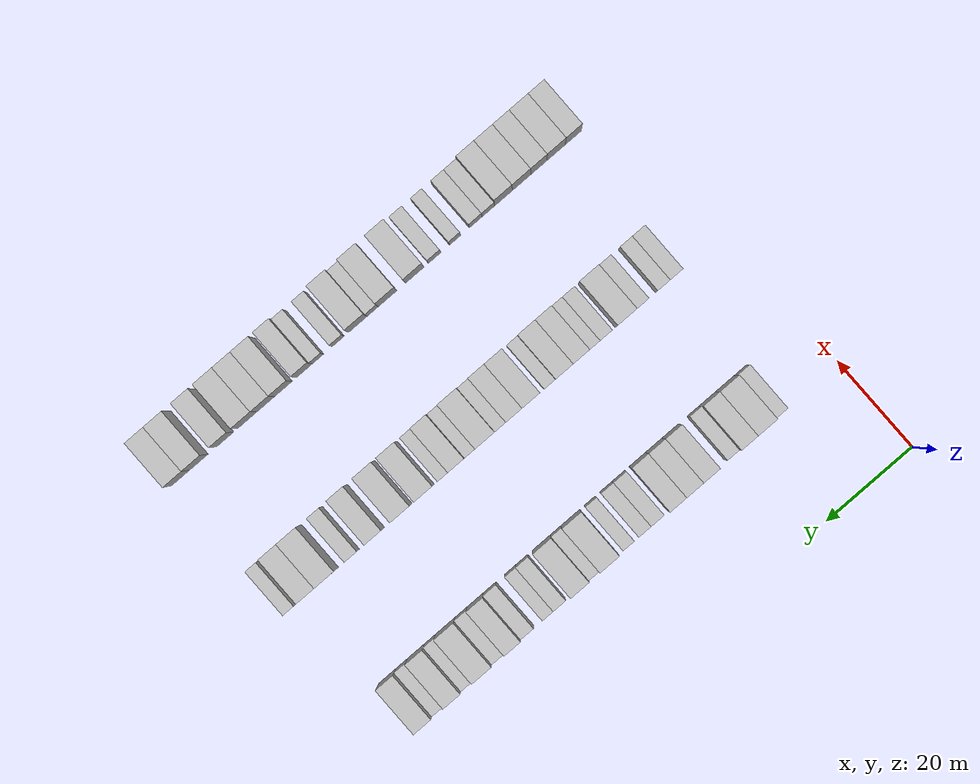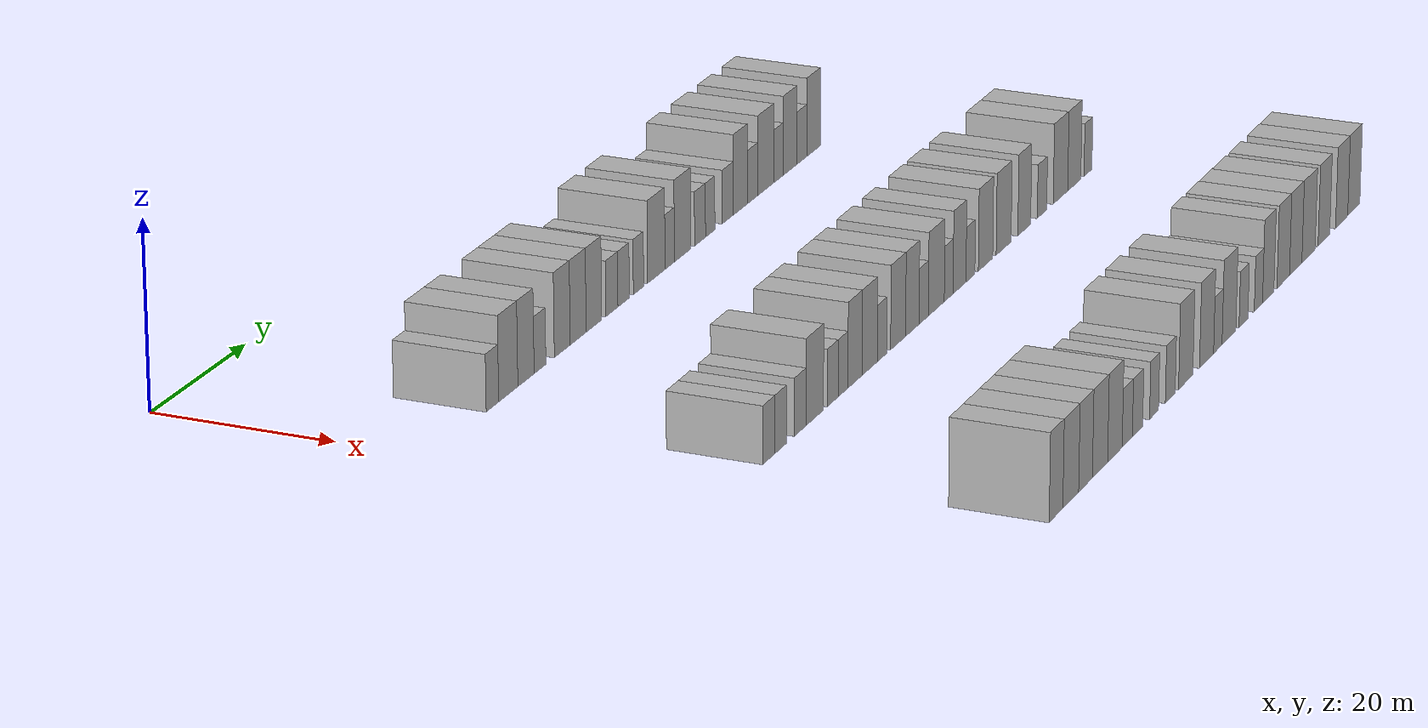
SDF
<sdf version="1.6">
 <world name="default">
  <model name="building_77">
   <static>1</static>
   <pose>25.0000 14.0366 0 0.000000 0.000000 0.000000</pose>
   <link name="link">
    <pose>0 0 3.00 0 0 0</pose>
    <collision name="collision"><geometry><box><size>10.0000 2.8470 6.0000</size></box></geometry></collision>
    <visual name="visual">
     <cast_shadows>0</cast_shadows>
     <geometry><box><size>10.0000 2.8470 6.0000</size></box></geometry>
     <material>
      <script>
       <uri>model://HANNAS_wall/materials/scripts</uri>
       <uri>model://HANNAS_wall/materials/textures</uri>
       <name>vrc/HANNAS_wall</name>
      </script>
     </material>
    </visual>
   </link>
  </model>
  <model name="building_78">
   <static>1</static>
   <pose>25.0000 17.6631 0 0.000000 0.000000 0.000000</pose>
   <link name="link">
    <pose>0 0 4.50 0 0 0</pose>
    <collision name="collision"><geometry><box><size>10.0000 4.4059 9.0000</size></box></geometry></collision>
    <visual name="visual">
     <cast_shadows>0</cast_shadows>
     <geometry><box><size>10.0000 4.4059 9.0000</size></box></geometry>
     <material>
      <script>
       <uri>model://HANNAS_wall/materials/scripts</uri>
       <uri>model://HANNAS_wall/materials/textures</uri>
       <name>vrc/HANNAS_wall</name>
      </script>
     </material>
    </visual>
   </link>
  </model>
  <model name="building_79">
   <static>1</static>
   <pose>25.0000 21.7551 0 0.000000 0.000000 0.000000</pose>
   <link name="link">
    <pose>0 0 4.50 0 0 0</pose>
    <collision name="collision"><geometry><box><size>10.0000 3.7781 9.0000</size></box></geometry></collision>
    <visual name="visual">
     <cast_shadows>0</cast_shadows>
     <geometry><box><size>10.0000 3.7781 9.0000</size></box></geometry>
     <material>
      <script>
       <uri>model://HANNAS_wall/materials/scripts</uri>
       <uri>model://HANNAS_wall/materials/textures</uri>
       <name>vrc/HANNAS_wall</name>
      </script>
     </material>
    </visual>
   </link>
  </model>
  <model name="building_80">
   <static>1</static>
   <pose>25.0000 25.0247 0 0.000000 0.000000 0.000000</pose>
   <link name="link">
    <pose>0 0 3.00 0 0 0</pose>
    <collision name="collision"><geometry><box><size>10.0000 2.7611 6.0000</size></box></geometry></collision>
    <visual name="visual">
     <cast_shadows>0</cast_shadows>
     <geometry><box><size>10.0000 2.7611 6.0000</size></box></geometry>
     <material>
      <script>
       <uri>model://HANNAS_wall/materials/scripts</uri>
       <uri>model://HANNAS_wall/materials/textures</uri>
       <name>vrc/HANNAS_wall</name>
      </script>
     </material>
    </visual>
   </link>
  </model>
  <model name="building_81">
   <static>1</static>
   <pose>25.0000 30.2982 0 0.000000 0.000000 0.000000</pose>
   <link name="link">
    <pose>0 0 4.50 0 0 0</pose>
    <collision name="collision"><geometry><box><size>10.0000 3.7858 9.0000</size></box></geometry></collision>
    <visual name="visual">
     <cast_shadows>0</cast_shadows>
     <geometry><box><size>10.0000 3.7858 9.0000</size></box></geometry>
     <material>
      <script>
       <uri>model://HANNAS_wall/materials/scripts</uri>
       <uri>model://HANNAS_wall/materials/textures</uri>
       <name>vrc/HANNAS_wall</name>
      </script>
     </material>
    </visual>
   </link>
  </model>
  <model name="building_82">
   <static>1</static>
   <pose>25.0000 34.1143 0 0.000000 0.000000 0.000000</pose>
   <link name="link">
    <pose>0 0 4.50 0 0 0</pose>
    <collision name="collision"><geometry><box><size>10.0000 3.8465 9.0000</size></box></geometry></collision>
    <visual name="visual">
     <cast_shadows>0</cast_shadows>
     <geometry><box><size>10.0000 3.8465 9.0000</size></box></geometry>
     <material>
      <script>
       <uri>model://HANNAS_wall/materials/scripts</uri>
       <uri>model://HANNAS_wall/materials/textures</uri>
       <name>vrc/HANNAS_wall</name>
      </script>
     </material>
    </visual>
   </link>
  </model>
  <model name="building_83">
   <static>1</static>
   <pose>25.0000 37.9271 0 0.000000 0.000000 0.000000</pose>
   <link name="link">
    <pose>0 0 4.50 0 0 0</pose>
    <collision name="collision"><geometry><box><size>10.0000 3.7790 9.0000</size></box></geometry></collision>
    <visual name="visual">
     <cast_shadows>0</cast_shadows>
     <geometry><box><size>10.0000 3.7790 9.0000</size></box></geometry>
     <material>
      <script>
       <uri>model://HANNAS_wall/materials/scripts</uri>
       <uri>model://HANNAS_wall/materials/textures</uri>
       <name>vrc/HANNAS_wall</name>
      </script>
     </material>
    </visual>
   </link>
  </model>
  <model name="building_84">
   <static>1</static>
   <pose>25.0000 42.3151 0 0.000000 0.000000 0.000000</pose>
   <link name="link">
    <pose>0 0 3.00 0 0 0</pose>
    <collision name="collision"><geometry><box><size>10.0000 2.9970 6.0000</size></box></geometry></collision>
    <visual name="visual">
     <cast_shadows>0</cast_shadows>
     <geometry><box><size>10.0000 2.9970 6.0000</size></box></geometry>
     <material>
      <script>
       <uri>model://HANNAS_wall/materials/scripts</uri>
       <uri>model://HANNAS_wall/materials/textures</uri>
       <name>vrc/HANNAS_wall</name>
      </script>
     </material>
    </visual>
   </link>
  </model>
  <model name="building_85">
   <static>1</static>
   <pose>25.0000 45.2334 0 0.000000 0.000000 0.000000</pose>
   <link name="link">
    <pose>0 0 3.00 0 0 0</pose>
    <collision name="collision"><geometry><box><size>10.0000 2.8396 6.0000</size></box></geometry></collision>
    <visual name="visual">
     <cast_shadows>0</cast_shadows>
     <geometry><box><size>10.0000 2.8396 6.0000</size></box></geometry>
     <material>
      <script>
       <uri>model://HANNAS_wall/materials/scripts</uri>
       <uri>model://HANNAS_wall/materials/textures</uri>
       <name>vrc/HANNAS_wall</name>
      </script>
     </material>
    </visual>
   </link>
  </model>
  <model name="building_86">
   <static>1</static>
   <pose>25.0000 48.9514 0 0.000000 0.000000 0.000000</pose>
   <link name="link">
    <pose>0 0 3.00 0 0 0</pose>
    <collision name="collision"><geometry><box><size>10.0000 2.5964 6.0000</size></box></geometry></collision>
    <visual name="visual">
     <cast_shadows>0</cast_shadows>
     <geometry><box><size>10.0000 2.5964 6.0000</size></box></geometry>
     <material>
      <script>
       <uri>model://HANNAS_wall/materials/scripts</uri>
       <uri>model://HANNAS_wall/materials/textures</uri>
       <name>vrc/HANNAS_wall</name>
      </script>
     </material>
    </visual>
   </link>
  </model>
  <model name="building_87">
   <static>1</static>
   <pose>25.0000 53.4645 0 0.000000 0.000000 0.000000</pose>
   <link name="link">
    <pose>0 0 4.50 0 0 0</pose>
    <collision name="collision"><geometry><box><size>10.0000 4.4298 9.0000</size></box></geometry></collision>
    <visual name="visual">
     <cast_shadows>0</cast_shadows>
     <geometry><box><size>10.0000 4.4298 9.0000</size></box></geometry>
     <material>
      <script>
       <uri>model://HANNAS_wall/materials/scripts</uri>
       <uri>model://HANNAS_wall/materials/textures</uri>
       <name>vrc/HANNAS_wall</name>
      </script>
     </material>
    </visual>
   </link>
  </model>
  <model name="building_88">
   <static>1</static>
   <pose>25.0000 56.8836 0 0.000000 0.000000 0.000000</pose>
   <link name="link">
    <pose>0 0 3.00 0 0 0</pose>
    <collision name="collision"><geometry><box><size>10.0000 2.4084 6.0000</size></box></geometry></collision>
    <visual name="visual">
     <cast_shadows>0</cast_shadows>
     <geometry><box><size>10.0000 2.4084 6.0000</size></box></geometry>
     <material>
      <script>
       <uri>model://HANNAS_wall/materials/scripts</uri>
       <uri>model://HANNAS_wall/materials/textures</uri>
       <name>vrc/HANNAS_wall</name>
      </script>
     </material>
    </visual>
   </link>
  </model>
  <model name="building_89">
   <static>1</static>
   <pose>25.0000 60.2076 0 0.000000 0.000000 0.000000</pose>
   <link name="link">
    <pose>0 0 4.50 0 0 0</pose>
    <collision name="collision"><geometry><box><size>10.0000 4.2395 9.0000</size></box></geometry></collision>
    <visual name="visual">
     <cast_shadows>0</cast_shadows>
     <geometry><box><size>10.0000 4.2395 9.0000</size></box></geometry>
     <material>
      <script>
       <uri>model://HANNAS_wall/materials/scripts</uri>
       <uri>model://HANNAS_wall/materials/textures</uri>
       <name>vrc/HANNAS_wall</name>
      </script>
     </material>
    </visual>
   </link>
  </model>
  <model name="building_90">
   <static>1</static>
   <pose>25.0000 64.7666 0 0.000000 0.000000 0.000000</pose>
   <link name="link">
    <pose>0 0 3.00 0 0 0</pose>
    <collision name="collision"><geometry><box><size>10.0000 2.8786 6.0000</size></box></geometry></collision>
    <visual name="visual">
     <cast_shadows>0</cast_shadows>
     <geometry><box><size>10.0000 2.8786 6.0000</size></box></geometry>
     <material>
      <script>
       <uri>model://HANNAS_wall/materials/scripts</uri>
       <uri>model://HANNAS_wall/materials/textures</uri>
       <name>vrc/HANNAS_wall</name>
      </script>
     </material>
    </visual>
   </link>
  </model>
  <model name="building_91">
   <static>1</static>
   <pose>25.0000 67.4434 0 0.000000 0.000000 0.000000</pose>
   <link name="link">
    <pose>0 0 3.00 0 0 0</pose>
    <collision name="collision"><geometry><box><size>10.0000 2.4750 6.0000</size></box></geometry></collision>
    <visual name="visual">
     <cast_shadows>0</cast_shadows>
     <geometry><box><size>10.0000 2.4750 6.0000</size></box></geometry>
     <material>
      <script>
       <uri>model://HANNAS_wall/materials/scripts</uri>
       <uri>model://HANNAS_wall/materials/textures</uri>
       <name>vrc/HANNAS_wall</name>
      </script>
     </material>
    </visual>
   </link>
  </model>
  <model name="building_92">
   <static>1</static>
   <pose>25.0000 72.1668 0 0.000000 0.000000 0.000000</pose>
   <link name="link">
    <pose>0 0 3.00 0 0 0</pose>
    <collision name="collision"><geometry><box><size>10.0000 2.9719 6.0000</size></box></geometry></collision>
    <visual name="visual">
     <cast_shadows>0</cast_shadows>
     <geometry><box><size>10.0000 2.9719 6.0000</size></box></geometry>
     <material>
      <script>
       <uri>model://HANNAS_wall/materials/scripts</uri>
       <uri>model://HANNAS_wall/materials/textures</uri>
       <name>vrc/HANNAS_wall</name>
      </script>
     </material>
    </visual>
   </link>
  </model>
  <model name="building_93">
   <static>1</static>
   <pose>25.0000 75.5226 0 0.000000 0.000000 0.000000</pose>
   <link name="link">
    <pose>0 0 4.50 0 0 0</pose>
    <collision name="collision"><geometry><box><size>10.0000 3.7398 9.0000</size></box></geometry></collision>
    <visual name="visual">
     <cast_shadows>0</cast_shadows>
     <geometry><box><size>10.0000 3.7398 9.0000</size></box></geometry>
     <material>
      <script>
       <uri>model://HANNAS_wall/materials/scripts</uri>
       <uri>model://HANNAS_wall/materials/textures</uri>
       <name>vrc/HANNAS_wall</name>
      </script>
     </material>
    </visual>
   </link>
  </model>
  <model name="building_94">
   <static>1</static>
   <pose>25.0000 78.8157 0 0.000000 0.000000 0.000000</pose>
   <link name="link">
    <pose>0 0 3.00 0 0 0</pose>
    <collision name="collision"><geometry><box><size>10.0000 2.8463 6.0000</size></box></geometry></collision>
    <visual name="visual">
     <cast_shadows>0</cast_shadows>
     <geometry><box><size>10.0000 2.8463 6.0000</size></box></geometry>
     <material>
      <script>
       <uri>model://HANNAS_wall/materials/scripts</uri>
       <uri>model://HANNAS_wall/materials/textures</uri>
       <name>vrc/HANNAS_wall</name>
      </script>
     </material>
    </visual>
   </link>
  </model>
  <model name="building_95">
   <static>1</static>
   <pose>25.0000 82.4844 0 0.000000 0.000000 0.000000</pose>
   <link name="link">
    <pose>0 0 4.50 0 0 0</pose>
    <collision name="collision"><geometry><box><size>10.0000 4.4910 9.0000</size></box></geometry></collision>
    <visual name="visual">
     <cast_shadows>0</cast_shadows>
     <geometry><box><size>10.0000 4.4910 9.0000</size></box></geometry>
     <material>
      <script>
       <uri>model://HANNAS_wall/materials/scripts</uri>
       <uri>model://HANNAS_wall/materials/textures</uri>
       <name>vrc/HANNAS_wall</name>
      </script>
     </material>
    </visual>
   </link>
  </model>
  <model name="building_96">
   <static>1</static>
   <pose>25.0000 86.0111 0 0.000000 0.000000 0.000000</pose>
   <link name="link">
    <pose>0 0 3.00 0 0 0</pose>
    <collision name="collision"><geometry><box><size>10.0000 2.5625 6.0000</size></box></geometry></collision>
    <visual name="visual">
     <cast_shadows>0</cast_shadows>
     <geometry><box><size>10.0000 2.5625 6.0000</size></box></geometry>
     <material>
      <script>
       <uri>model://HANNAS_wall/materials/scripts</uri>
       <uri>model://HANNAS_wall/materials/textures</uri>
       <name>vrc/HANNAS_wall</name>
      </script>
     </material>
    </visual>
   </link>
  </model>
  <model name="building_97">
   <static>1</static>
   <pose>25.0000 89.2472 0 0.000000 0.000000 0.000000</pose>
   <link name="link">
    <pose>0 0 4.50 0 0 0</pose>
    <collision name="collision"><geometry><box><size>10.0000 3.9097 9.0000</size></box></geometry></collision>
    <visual name="visual">
     <cast_shadows>0</cast_shadows>
     <geometry><box><size>10.0000 3.9097 9.0000</size></box></geometry>
     <material>
      <script>
       <uri>model://HANNAS_wall/materials/scripts</uri>
       <uri>model://HANNAS_wall/materials/textures</uri>
       <name>vrc/HANNAS_wall</name>
      </script>
     </material>
    </visual>
   </link>
  </model>
  <model name="building_98">
   <static>1</static>
   <pose>25.0000 92.5589 0 0.000000 0.000000 0.000000</pose>
   <link name="link">
    <pose>0 0 3.00 0 0 0</pose>
    <collision name="collision"><geometry><box><size>10.0000 2.7136 6.0000</size></box></geometry></collision>
    <visual name="visual">
     <cast_shadows>0</cast_shadows>
     <geometry><box><size>10.0000 2.7136 6.0000</size></box></geometry>
     <material>
      <script>
       <uri>model://HANNAS_wall/materials/scripts</uri>
       <uri>model://HANNAS_wall/materials/textures</uri>
       <name>vrc/HANNAS_wall</name>
      </script>
     </material>
    </visual>
   </link>
  </model>
  <model name="building_99">
   <static>1</static>
   <pose>25.0000 95.8865 0 0.000000 0.000000 0.000000</pose>
   <link name="link">
    <pose>0 0 4.50 0 0 0</pose>
    <collision name="collision"><geometry><box><size>10.0000 3.9416 9.0000</size></box></geometry></collision>
    <visual name="visual">
     <cast_shadows>0</cast_shadows>
     <geometry><box><size>10.0000 3.9416 9.0000</size></box></geometry>
     <material>
      <script>
       <uri>model://HANNAS_wall/materials/scripts</uri>
       <uri>model://HANNAS_wall/materials/textures</uri>
       <name>vrc/HANNAS_wall</name>
      </script>
     </material>
    </visual>
   </link>
  </model>
  <model name="building_200">
   <static>1</static>
   <pose>55.0000 12.0039 0 0.000000 0.000000 0.000000</pose>
   <link name="link">
    <pose>0 0 3.00 0 0 0</pose>
    <collision name="collision"><geometry><box><size>10.0000 2.9426 6.0000</size></box></geometry></collision>
    <visual name="visual">
     <cast_shadows>0</cast_shadows>
     <geometry><box><size>10.0000 2.9426 6.0000</size></box></geometry>
     <material>
      <script>
       <uri>model://HANNAS_wall/materials/scripts</uri>
       <uri>model://HANNAS_wall/materials/textures</uri>
       <name>vrc/HANNAS_wall</name>
      </script>
     </material>
    </visual>
   </link>
  </model>
  <model name="building_201">
   <static>1</static>
   <pose>55.0000 14.8924 0 0.000000 0.000000 0.000000</pose>
   <link name="link">
    <pose>0 0 3.00 0 0 0</pose>
    <collision name="collision"><geometry><box><size>10.0000 2.8344 6.0000</size></box></geometry></collision>
    <visual name="visual">
     <cast_shadows>0</cast_shadows>
     <geometry><box><size>10.0000 2.8344 6.0000</size></box></geometry>
     <material>
      <script>
       <uri>model://HANNAS_wall/materials/scripts</uri>
       <uri>model://HANNAS_wall/materials/textures</uri>
       <name>vrc/HANNAS_wall</name>
      </script>
     </material>
    </visual>
   </link>
  </model>
  <model name="building_202">
   <static>1</static>
   <pose>55.0000 19.7790 0 0.000000 0.000000 0.000000</pose>
   <link name="link">
    <pose>0 0 3.00 0 0 0</pose>
    <collision name="collision"><geometry><box><size>10.0000 2.9390 6.0000</size></box></geometry></collision>
    <visual name="visual">
     <cast_shadows>0</cast_shadows>
     <geometry><box><size>10.0000 2.9390 6.0000</size></box></geometry>
     <material>
      <script>
       <uri>model://HANNAS_wall/materials/scripts</uri>
       <uri>model://HANNAS_wall/materials/textures</uri>
       <name>vrc/HANNAS_wall</name>
      </script>
     </material>
    </visual>
   </link>
  </model>
  <model name="building_203">
   <static>1</static>
   <pose>55.0000 23.4497 0 0.000000 0.000000 0.000000</pose>
   <link name="link">
    <pose>0 0 4.50 0 0 0</pose>
    <collision name="collision"><geometry><box><size>10.0000 4.4023 9.0000</size></box></geometry></collision>
    <visual name="visual">
     <cast_shadows>0</cast_shadows>
     <geometry><box><size>10.0000 4.4023 9.0000</size></box></geometry>
     <material>
      <script>
       <uri>model://HANNAS_wall/materials/scripts</uri>
       <uri>model://HANNAS_wall/materials/textures</uri>
       <name>vrc/HANNAS_wall</name>
      </script>
     </material>
    </visual>
   </link>
  </model>
  <model name="building_204">
   <static>1</static>
   <pose>55.0000 28.0637 0 0.000000 0.000000 0.000000</pose>
   <link name="link">
    <pose>0 0 3.00 0 0 0</pose>
    <collision name="collision"><geometry><box><size>10.0000 2.8258 6.0000</size></box></geometry></collision>
    <visual name="visual">
     <cast_shadows>0</cast_shadows>
     <geometry><box><size>10.0000 2.8258 6.0000</size></box></geometry>
     <material>
      <script>
       <uri>model://HANNAS_wall/materials/scripts</uri>
       <uri>model://HANNAS_wall/materials/textures</uri>
       <name>vrc/HANNAS_wall</name>
      </script>
     </material>
    </visual>
   </link>
  </model>
  <model name="building_205">
   <static>1</static>
   <pose>55.0000 30.7198 0 0.000000 0.000000 0.000000</pose>
   <link name="link">
    <pose>0 0 3.00 0 0 0</pose>
    <collision name="collision"><geometry><box><size>10.0000 2.4864 6.0000</size></box></geometry></collision>
    <visual name="visual">
     <cast_shadows>0</cast_shadows>
     <geometry><box><size>10.0000 2.4864 6.0000</size></box></geometry>
     <material>
      <script>
       <uri>model://HANNAS_wall/materials/scripts</uri>
       <uri>model://HANNAS_wall/materials/textures</uri>
       <name>vrc/HANNAS_wall</name>
      </script>
     </material>
    </visual>
   </link>
  </model>
  <model name="building_206">
   <static>1</static>
   <pose>55.0000 33.8357 0 0.000000 0.000000 0.000000</pose>
   <link name="link">
    <pose>0 0 4.50 0 0 0</pose>
    <collision name="collision"><geometry><box><size>10.0000 3.7456 9.0000</size></box></geometry></collision>
    <visual name="visual">
     <cast_shadows>0</cast_shadows>
     <geometry><box><size>10.0000 3.7456 9.0000</size></box></geometry>
     <material>
      <script>
       <uri>model://HANNAS_wall/materials/scripts</uri>
       <uri>model://HANNAS_wall/materials/textures</uri>
       <name>vrc/HANNAS_wall</name>
      </script>
     </material>
    </visual>
   </link>
  </model>
  <model name="building_207">
   <static>1</static>
   <pose>55.0000 37.7009 0 0.000000 0.000000 0.000000</pose>
   <link name="link">
    <pose>0 0 4.50 0 0 0</pose>
    <collision name="collision"><geometry><box><size>10.0000 3.9847 9.0000</size></box></geometry></collision>
    <visual name="visual">
     <cast_shadows>0</cast_shadows>
     <geometry><box><size>10.0000 3.9847 9.0000</size></box></geometry>
     <material>
      <script>
       <uri>model://HANNAS_wall/materials/scripts</uri>
       <uri>model://HANNAS_wall/materials/textures</uri>
       <name>vrc/HANNAS_wall</name>
      </script>
     </material>
    </visual>
   </link>
  </model>
  <model name="building_208">
   <static>1</static>
   <pose>55.0000 40.9640 0 0.000000 0.000000 0.000000</pose>
   <link name="link">
    <pose>0 0 3.00 0 0 0</pose>
    <collision name="collision"><geometry><box><size>10.0000 2.5416 6.0000</size></box></geometry></collision>
    <visual name="visual">
     <cast_shadows>0</cast_shadows>
     <geometry><box><size>10.0000 2.5416 6.0000</size></box></geometry>
     <material>
      <script>
       <uri>model://HANNAS_wall/materials/scripts</uri>
       <uri>model://HANNAS_wall/materials/textures</uri>
       <name>vrc/HANNAS_wall</name>
      </script>
     </material>
    </visual>
   </link>
  </model>
  <model name="building_209">
   <static>1</static>
   <pose>55.0000 45.2637 0 0.000000 0.000000 0.000000</pose>
   <link name="link">
    <pose>0 0 4.50 0 0 0</pose>
    <collision name="collision"><geometry><box><size>10.0000 4.0578 9.0000</size></box></geometry></collision>
    <visual name="visual">
     <cast_shadows>0</cast_shadows>
     <geometry><box><size>10.0000 4.0578 9.0000</size></box></geometry>
     <material>
      <script>
       <uri>model://HANNAS_wall/materials/scripts</uri>
       <uri>model://HANNAS_wall/materials/textures</uri>
       <name>vrc/HANNAS_wall</name>
      </script>
     </material>
    </visual>
   </link>
  </model>
  <model name="building_210">
   <static>1</static>
   <pose>55.0000 49.1366 0 0.000000 0.000000 0.000000</pose>
   <link name="link">
    <pose>0 0 4.50 0 0 0</pose>
    <collision name="collision"><geometry><box><size>10.0000 3.6881 9.0000</size></box></geometry></collision>
    <visual name="visual">
     <cast_shadows>0</cast_shadows>
     <geometry><box><size>10.0000 3.6881 9.0000</size></box></geometry>
     <material>
      <script>
       <uri>model://HANNAS_wall/materials/scripts</uri>
       <uri>model://HANNAS_wall/materials/textures</uri>
       <name>vrc/HANNAS_wall</name>
      </script>
     </material>
    </visual>
   </link>
  </model>
  <model name="building_211">
   <static>1</static>
   <pose>55.0000 52.2561 0 0.000000 0.000000 0.000000</pose>
   <link name="link">
    <pose>0 0 3.00 0 0 0</pose>
    <collision name="collision"><geometry><box><size>10.0000 2.5509 6.0000</size></box></geometry></collision>
    <visual name="visual">
     <cast_shadows>0</cast_shadows>
     <geometry><box><size>10.0000 2.5509 6.0000</size></box></geometry>
     <material>
      <script>
       <uri>model://HANNAS_wall/materials/scripts</uri>
       <uri>model://HANNAS_wall/materials/textures</uri>
       <name>vrc/HANNAS_wall</name>
      </script>
     </material>
    </visual>
   </link>
  </model>
  <model name="building_212">
   <static>1</static>
   <pose>55.0000 55.7470 0 0.000000 0.000000 0.000000</pose>
   <link name="link">
    <pose>0 0 4.50 0 0 0</pose>
    <collision name="collision"><geometry><box><size>10.0000 4.4308 9.0000</size></box></geometry></collision>
    <visual name="visual">
     <cast_shadows>0</cast_shadows>
     <geometry><box><size>10.0000 4.4308 9.0000</size></box></geometry>
     <material>
      <script>
       <uri>model://HANNAS_wall/materials/scripts</uri>
       <uri>model://HANNAS_wall/materials/textures</uri>
       <name>vrc/HANNAS_wall</name>
      </script>
     </material>
    </visual>
   </link>
  </model>
  <model name="building_213">
   <static>1</static>
   <pose>55.0000 59.2008 0 0.000000 0.000000 0.000000</pose>
   <link name="link">
    <pose>0 0 3.00 0 0 0</pose>
    <collision name="collision"><geometry><box><size>10.0000 2.4770 6.0000</size></box></geometry></collision>
    <visual name="visual">
     <cast_shadows>0</cast_shadows>
     <geometry><box><size>10.0000 2.4770 6.0000</size></box></geometry>
     <material>
      <script>
       <uri>model://HANNAS_wall/materials/scripts</uri>
       <uri>model://HANNAS_wall/materials/textures</uri>
       <name>vrc/HANNAS_wall</name>
      </script>
     </material>
    </visual>
   </link>
  </model>
  <model name="building_214">
   <static>1</static>
   <pose>55.0000 62.2679 0 0.000000 0.000000 0.000000</pose>
   <link name="link">
    <pose>0 0 4.50 0 0 0</pose>
    <collision name="collision"><geometry><box><size>10.0000 3.6572 9.0000</size></box></geometry></collision>
    <visual name="visual">
     <cast_shadows>0</cast_shadows>
     <geometry><box><size>10.0000 3.6572 9.0000</size></box></geometry>
     <material>
      <script>
       <uri>model://HANNAS_wall/materials/scripts</uri>
       <uri>model://HANNAS_wall/materials/textures</uri>
       <name>vrc/HANNAS_wall</name>
      </script>
     </material>
    </visual>
   </link>
  </model>
  <model name="building_215">
   <static>1</static>
   <pose>55.0000 65.3644 0 0.000000 0.000000 0.000000</pose>
   <link name="link">
    <pose>0 0 3.00 0 0 0</pose>
    <collision name="collision"><geometry><box><size>10.0000 2.5357 6.0000</size></box></geometry></collision>
    <visual name="visual">
     <cast_shadows>0</cast_shadows>
     <geometry><box><size>10.0000 2.5357 6.0000</size></box></geometry>
     <material>
      <script>
       <uri>model://HANNAS_wall/materials/scripts</uri>
       <uri>model://HANNAS_wall/materials/textures</uri>
       <name>vrc/HANNAS_wall</name>
      </script>
     </material>
    </visual>
   </link>
  </model>
  <model name="building_216">
   <static>1</static>
   <pose>55.0000 69.7214 0 0.000000 0.000000 0.000000</pose>
   <link name="link">
    <pose>0 0 4.50 0 0 0</pose>
    <collision name="collision"><geometry><box><size>10.0000 4.1784 9.0000</size></box></geometry></collision>
    <visual name="visual">
     <cast_shadows>0</cast_shadows>
     <geometry><box><size>10.0000 4.1784 9.0000</size></box></geometry>
     <material>
      <script>
       <uri>model://HANNAS_wall/materials/scripts</uri>
       <uri>model://HANNAS_wall/materials/textures</uri>
       <name>vrc/HANNAS_wall</name>
      </script>
     </material>
    </visual>
   </link>
  </model>
  <model name="building_217">
   <static>1</static>
   <pose>55.0000 75.0051 0 0.000000 0.000000 0.000000</pose>
   <link name="link">
    <pose>0 0 4.50 0 0 0</pose>
    <collision name="collision"><geometry><box><size>10.0000 4.3889 9.0000</size></box></geometry></collision>
    <visual name="visual">
     <cast_shadows>0</cast_shadows>
     <geometry><box><size>10.0000 4.3889 9.0000</size></box></geometry>
     <material>
      <script>
       <uri>model://HANNAS_wall/materials/scripts</uri>
       <uri>model://HANNAS_wall/materials/textures</uri>
       <name>vrc/HANNAS_wall</name>
      </script>
     </material>
    </visual>
   </link>
  </model>
  <model name="building_218">
   <static>1</static>
   <pose>55.0000 81.1174 0 0.000000 0.000000 0.000000</pose>
   <link name="link">
    <pose>0 0 4.50 0 0 0</pose>
    <collision name="collision"><geometry><box><size>10.0000 3.8358 9.0000</size></box></geometry></collision>
    <visual name="visual">
     <cast_shadows>0</cast_shadows>
     <geometry><box><size>10.0000 3.8358 9.0000</size></box></geometry>
     <material>
      <script>
       <uri>model://HANNAS_wall/materials/scripts</uri>
       <uri>model://HANNAS_wall/materials/textures</uri>
       <name>vrc/HANNAS_wall</name>
      </script>
     </material>
    </visual>
   </link>
  </model>
  <model name="building_219">
   <static>1</static>
   <pose>55.0000 86.4607 0 0.000000 0.000000 0.000000</pose>
   <link name="link">
    <pose>0 0 3.00 0 0 0</pose>
    <collision name="collision"><geometry><box><size>10.0000 2.8509 6.0000</size></box></geometry></collision>
    <visual name="visual">
     <cast_shadows>0</cast_shadows>
     <geometry><box><size>10.0000 2.8509 6.0000</size></box></geometry>
     <material>
      <script>
       <uri>model://HANNAS_wall/materials/scripts</uri>
       <uri>model://HANNAS_wall/materials/textures</uri>
       <name>vrc/HANNAS_wall</name>
      </script>
     </material>
    </visual>
   </link>
  </model>
  <model name="building_220">
   <static>1</static>
   <pose>55.0000 92.1130 0 0.000000 0.000000 0.000000</pose>
   <link name="link">
    <pose>0 0 4.50 0 0 0</pose>
    <collision name="collision"><geometry><box><size>10.0000 4.4537 9.0000</size></box></geometry></collision>
    <visual name="visual">
     <cast_shadows>0</cast_shadows>
     <geometry><box><size>10.0000 4.4537 9.0000</size></box></geometry>
     <material>
      <script>
       <uri>model://HANNAS_wall/materials/scripts</uri>
       <uri>model://HANNAS_wall/materials/textures</uri>
       <name>vrc/HANNAS_wall</name>
      </script>
     </material>
    </visual>
   </link>
  </model>
  <model name="building_221">
   <static>1</static>
   <pose>55.0000 96.3836 0 0.000000 0.000000 0.000000</pose>
   <link name="link">
    <pose>0 0 4.50 0 0 0</pose>
    <collision name="collision"><geometry><box><size>10.0000 4.0874 9.0000</size></box></geometry></collision>
    <visual name="visual">
     <cast_shadows>0</cast_shadows>
     <geometry><box><size>10.0000 4.0874 9.0000</size></box></geometry>
     <material>
      <script>
       <uri>model://HANNAS_wall/materials/scripts</uri>
       <uri>model://HANNAS_wall/materials/textures</uri>
       <name>vrc/HANNAS_wall</name>
      </script>
     </material>
    </visual>
   </link>
  </model>
  <model name="building_222">
   <static>1</static>
   <pose>55.0000 100.6702 0 0.000000 0.000000 0.000000</pose>
   <link name="link">
    <pose>0 0 3.00 0 0 0</pose>
    <collision name="collision"><geometry><box><size>10.0000 2.4858 6.0000</size></box></geometry></collision>
    <visual name="visual">
     <cast_shadows>0</cast_shadows>
     <geometry><box><size>10.0000 2.4858 6.0000</size></box></geometry>
     <material>
      <script>
       <uri>model://HANNAS_wall/materials/scripts</uri>
       <uri>model://HANNAS_wall/materials/textures</uri>
       <name>vrc/HANNAS_wall</name>
      </script>
     </material>
    </visual>
   </link>
  </model>
  <model name="building_336">
   <static>1</static>
   <pose>85.0000 9.4658 0 0.000000 0.000000 0.000000</pose>
   <link name="link">
    <pose>0 0 4.50 0 0 0</pose>
    <collision name="collision"><geometry><box><size>10.0000 3.6688 9.0000</size></box></geometry></collision>
    <visual name="visual">
     <cast_shadows>0</cast_shadows>
     <geometry><box><size>10.0000 3.6688 9.0000</size></box></geometry>
     <material>
      <script>
       <uri>model://HANNAS_wall/materials/scripts</uri>
       <uri>model://HANNAS_wall/materials/textures</uri>
       <name>vrc/HANNAS_wall</name>
      </script>
     </material>
    </visual>
   </link>
  </model>
  <model name="building_337">
   <static>1</static>
   <pose>85.0000 13.4386 0 0.000000 0.000000 0.000000</pose>
   <link name="link">
    <pose>0 0 4.50 0 0 0</pose>
    <collision name="collision"><geometry><box><size>10.0000 4.2768 9.0000</size></box></geometry></collision>
    <visual name="visual">
     <cast_shadows>0</cast_shadows>
     <geometry><box><size>10.0000 4.2768 9.0000</size></box></geometry>
     <material>
      <script>
       <uri>model://HANNAS_wall/materials/scripts</uri>
       <uri>model://HANNAS_wall/materials/textures</uri>
       <name>vrc/HANNAS_wall</name>
      </script>
     </material>
    </visual>
   </link>
  </model>
  <model name="building_338">
   <static>1</static>
   <pose>85.0000 17.4659 0 0.000000 0.000000 0.000000</pose>
   <link name="link">
    <pose>0 0 4.50 0 0 0</pose>
    <collision name="collision"><geometry><box><size>10.0000 3.7776 9.0000</size></box></geometry></collision>
    <visual name="visual">
     <cast_shadows>0</cast_shadows>
     <geometry><box><size>10.0000 3.7776 9.0000</size></box></geometry>
     <material>
      <script>
       <uri>model://HANNAS_wall/materials/scripts</uri>
       <uri>model://HANNAS_wall/materials/textures</uri>
       <name>vrc/HANNAS_wall</name>
      </script>
     </material>
    </visual>
   </link>
  </model>
  <model name="building_339">
   <static>1</static>
   <pose>85.0000 21.4714 0 0.000000 0.000000 0.000000</pose>
   <link name="link">
    <pose>0 0 4.50 0 0 0</pose>
    <collision name="collision"><geometry><box><size>10.0000 4.2334 9.0000</size></box></geometry></collision>
    <visual name="visual">
     <cast_shadows>0</cast_shadows>
     <geometry><box><size>10.0000 4.2334 9.0000</size></box></geometry>
     <material>
      <script>
       <uri>model://HANNAS_wall/materials/scripts</uri>
       <uri>model://HANNAS_wall/materials/textures</uri>
       <name>vrc/HANNAS_wall</name>
      </script>
     </material>
    </visual>
   </link>
  </model>
  <model name="building_340">
   <static>1</static>
   <pose>85.0000 25.6424 0 0.000000 0.000000 0.000000</pose>
   <link name="link">
    <pose>0 0 4.50 0 0 0</pose>
    <collision name="collision"><geometry><box><size>10.0000 4.1087 9.0000</size></box></geometry></collision>
    <visual name="visual">
     <cast_shadows>0</cast_shadows>
     <geometry><box><size>10.0000 4.1087 9.0000</size></box></geometry>
     <material>
      <script>
       <uri>model://HANNAS_wall/materials/scripts</uri>
       <uri>model://HANNAS_wall/materials/textures</uri>
       <name>vrc/HANNAS_wall</name>
      </script>
     </material>
    </visual>
   </link>
  </model>
  <model name="building_341">
   <static>1</static>
   <pose>85.0000 29.1468 0 0.000000 0.000000 0.000000</pose>
   <link name="link">
    <pose>0 0 3.00 0 0 0</pose>
    <collision name="collision"><geometry><box><size>10.0000 2.9002 6.0000</size></box></geometry></collision>
    <visual name="visual">
     <cast_shadows>0</cast_shadows>
     <geometry><box><size>10.0000 2.9002 6.0000</size></box></geometry>
     <material>
      <script>
       <uri>model://HANNAS_wall/materials/scripts</uri>
       <uri>model://HANNAS_wall/materials/textures</uri>
       <name>vrc/HANNAS_wall</name>
      </script>
     </material>
    </visual>
   </link>
  </model>
  <model name="building_342">
   <static>1</static>
   <pose>85.0000 32.0718 0 0.000000 0.000000 0.000000</pose>
   <link name="link">
    <pose>0 0 3.00 0 0 0</pose>
    <collision name="collision"><geometry><box><size>10.0000 2.9496 6.0000</size></box></geometry></collision>
    <visual name="visual">
     <cast_shadows>0</cast_shadows>
     <geometry><box><size>10.0000 2.9496 6.0000</size></box></geometry>
     <material>
      <script>
       <uri>model://HANNAS_wall/materials/scripts</uri>
       <uri>model://HANNAS_wall/materials/textures</uri>
       <name>vrc/HANNAS_wall</name>
      </script>
     </material>
    </visual>
   </link>
  </model>
  <model name="building_343">
   <static>1</static>
   <pose>85.0000 36.8495 0 0.000000 0.000000 0.000000</pose>
   <link name="link">
    <pose>0 0 3.00 0 0 0</pose>
    <collision name="collision"><geometry><box><size>10.0000 2.6058 6.0000</size></box></geometry></collision>
    <visual name="visual">
     <cast_shadows>0</cast_shadows>
     <geometry><box><size>10.0000 2.6058 6.0000</size></box></geometry>
     <material>
      <script>
       <uri>model://HANNAS_wall/materials/scripts</uri>
       <uri>model://HANNAS_wall/materials/textures</uri>
       <name>vrc/HANNAS_wall</name>
      </script>
     </material>
    </visual>
   </link>
  </model>
  <model name="building_344">
   <static>1</static>
   <pose>85.0000 41.6065 0 0.000000 0.000000 0.000000</pose>
   <link name="link">
    <pose>0 0 3.00 0 0 0</pose>
    <collision name="collision"><geometry><box><size>10.0000 2.9083 6.0000</size></box></geometry></collision>
    <visual name="visual">
     <cast_shadows>0</cast_shadows>
     <geometry><box><size>10.0000 2.9083 6.0000</size></box></geometry>
     <material>
      <script>
       <uri>model://HANNAS_wall/materials/scripts</uri>
       <uri>model://HANNAS_wall/materials/textures</uri>
       <name>vrc/HANNAS_wall</name>
      </script>
     </material>
    </visual>
   </link>
  </model>
  <model name="building_345">
   <static>1</static>
   <pose>85.0000 46.2037 0 0.000000 0.000000 0.000000</pose>
   <link name="link">
    <pose>0 0 4.50 0 0 0</pose>
    <collision name="collision"><geometry><box><size>10.0000 4.2861 9.0000</size></box></geometry></collision>
    <visual name="visual">
     <cast_shadows>0</cast_shadows>
     <geometry><box><size>10.0000 4.2861 9.0000</size></box></geometry>
     <material>
      <script>
       <uri>model://HANNAS_wall/materials/scripts</uri>
       <uri>model://HANNAS_wall/materials/textures</uri>
       <name>vrc/HANNAS_wall</name>
      </script>
     </material>
    </visual>
   </link>
  </model>
  <model name="building_346">
   <static>1</static>
   <pose>85.0000 52.4986 0 0.000000 0.000000 0.000000</pose>
   <link name="link">
    <pose>0 0 4.50 0 0 0</pose>
    <collision name="collision"><geometry><box><size>10.0000 4.3035 9.0000</size></box></geometry></collision>
    <visual name="visual">
     <cast_shadows>0</cast_shadows>
     <geometry><box><size>10.0000 4.3035 9.0000</size></box></geometry>
     <material>
      <script>
       <uri>model://HANNAS_wall/materials/scripts</uri>
       <uri>model://HANNAS_wall/materials/textures</uri>
       <name>vrc/HANNAS_wall</name>
      </script>
     </material>
    </visual>
   </link>
  </model>
  <model name="building_347">
   <static>1</static>
   <pose>85.0000 55.9511 0 0.000000 0.000000 0.000000</pose>
   <link name="link">
    <pose>0 0 3.00 0 0 0</pose>
    <collision name="collision"><geometry><box><size>10.0000 2.6016 6.0000</size></box></geometry></collision>
    <visual name="visual">
     <cast_shadows>0</cast_shadows>
     <geometry><box><size>10.0000 2.6016 6.0000</size></box></geometry>
     <material>
      <script>
       <uri>model://HANNAS_wall/materials/scripts</uri>
       <uri>model://HANNAS_wall/materials/textures</uri>
       <name>vrc/HANNAS_wall</name>
      </script>
     </material>
    </visual>
   </link>
  </model>
  <model name="building_348">
   <static>1</static>
   <pose>85.0000 59.3944 0 0.000000 0.000000 0.000000</pose>
   <link name="link">
    <pose>0 0 4.50 0 0 0</pose>
    <collision name="collision"><geometry><box><size>10.0000 4.2851 9.0000</size></box></geometry></collision>
    <visual name="visual">
     <cast_shadows>0</cast_shadows>
     <geometry><box><size>10.0000 4.2851 9.0000</size></box></geometry>
     <material>
      <script>
       <uri>model://HANNAS_wall/materials/scripts</uri>
       <uri>model://HANNAS_wall/materials/textures</uri>
       <name>vrc/HANNAS_wall</name>
      </script>
     </material>
    </visual>
   </link>
  </model>
  <model name="building_349">
   <static>1</static>
   <pose>85.0000 63.9392 0 0.000000 0.000000 0.000000</pose>
   <link name="link">
    <pose>0 0 3.00 0 0 0</pose>
    <collision name="collision"><geometry><box><size>10.0000 2.8045 6.0000</size></box></geometry></collision>
    <visual name="visual">
     <cast_shadows>0</cast_shadows>
     <geometry><box><size>10.0000 2.8045 6.0000</size></box></geometry>
     <material>
      <script>
       <uri>model://HANNAS_wall/materials/scripts</uri>
       <uri>model://HANNAS_wall/materials/textures</uri>
       <name>vrc/HANNAS_wall</name>
      </script>
     </material>
    </visual>
   </link>
  </model>
  <model name="building_350">
   <static>1</static>
   <pose>85.0000 68.6629 0 0.000000 0.000000 0.000000</pose>
   <link name="link">
    <pose>0 0 3.00 0 0 0</pose>
    <collision name="collision"><geometry><box><size>10.0000 2.6429 6.0000</size></box></geometry></collision>
    <visual name="visual">
     <cast_shadows>0</cast_shadows>
     <geometry><box><size>10.0000 2.6429 6.0000</size></box></geometry>
     <material>
      <script>
       <uri>model://HANNAS_wall/materials/scripts</uri>
       <uri>model://HANNAS_wall/materials/textures</uri>
       <name>vrc/HANNAS_wall</name>
      </script>
     </material>
    </visual>
   </link>
  </model>
  <model name="building_351">
   <static>1</static>
   <pose>85.0000 71.8116 0 0.000000 0.000000 0.000000</pose>
   <link name="link">
    <pose>0 0 4.50 0 0 0</pose>
    <collision name="collision"><geometry><box><size>10.0000 3.6546 9.0000</size></box></geometry></collision>
    <visual name="visual">
     <cast_shadows>0</cast_shadows>
     <geometry><box><size>10.0000 3.6546 9.0000</size></box></geometry>
     <material>
      <script>
       <uri>model://HANNAS_wall/materials/scripts</uri>
       <uri>model://HANNAS_wall/materials/textures</uri>
       <name>vrc/HANNAS_wall</name>
      </script>
     </material>
    </visual>
   </link>
  </model>
  <model name="building_352">
   <static>1</static>
   <pose>85.0000 76.6802 0 0.000000 0.000000 0.000000</pose>
   <link name="link">
    <pose>0 0 4.50 0 0 0</pose>
    <collision name="collision"><geometry><box><size>10.0000 4.0825 9.0000</size></box></geometry></collision>
    <visual name="visual">
     <cast_shadows>0</cast_shadows>
     <geometry><box><size>10.0000 4.0825 9.0000</size></box></geometry>
     <material>
      <script>
       <uri>model://HANNAS_wall/materials/scripts</uri>
       <uri>model://HANNAS_wall/materials/textures</uri>
       <name>vrc/HANNAS_wall</name>
      </script>
     </material>
    </visual>
   </link>
  </model>
  <model name="building_353">
   <static>1</static>
   <pose>85.0000 80.7751 0 0.000000 0.000000 0.000000</pose>
   <link name="link">
    <pose>0 0 4.50 0 0 0</pose>
    <collision name="collision"><geometry><box><size>10.0000 4.1073 9.0000</size></box></geometry></collision>
    <visual name="visual">
     <cast_shadows>0</cast_shadows>
     <geometry><box><size>10.0000 4.1073 9.0000</size></box></geometry>
     <material>
      <script>
       <uri>model://HANNAS_wall/materials/scripts</uri>
       <uri>model://HANNAS_wall/materials/textures</uri>
       <name>vrc/HANNAS_wall</name>
      </script>
     </material>
    </visual>
   </link>
  </model>
  <model name="building_354">
   <static>1</static>
   <pose>85.0000 85.0351 0 0.000000 0.000000 0.000000</pose>
   <link name="link">
    <pose>0 0 4.50 0 0 0</pose>
    <collision name="collision"><geometry><box><size>10.0000 4.4127 9.0000</size></box></geometry></collision>
    <visual name="visual">
     <cast_shadows>0</cast_shadows>
     <geometry><box><size>10.0000 4.4127 9.0000</size></box></geometry>
     <material>
      <script>
       <uri>model://HANNAS_wall/materials/scripts</uri>
       <uri>model://HANNAS_wall/materials/textures</uri>
       <name>vrc/HANNAS_wall</name>
      </script>
     </material>
    </visual>
   </link>
  </model>
  <model name="building_355">
   <static>1</static>
   <pose>85.0000 90.2117 0 0.000000 0.000000 0.000000</pose>
   <link name="link">
    <pose>0 0 4.50 0 0 0</pose>
    <collision name="collision"><geometry><box><size>10.0000 3.9406 9.0000</size></box></geometry></collision>
    <visual name="visual">
     <cast_shadows>0</cast_shadows>
     <geometry><box><size>10.0000 3.9406 9.0000</size></box></geometry>
     <material>
      <script>
       <uri>model://HANNAS_wall/materials/scripts</uri>
       <uri>model://HANNAS_wall/materials/textures</uri>
       <name>vrc/HANNAS_wall</name>
      </script>
     </material>
    </visual>
   </link>
  </model>
  <model name="building_356">
   <static>1</static>
   <pose>85.0000 96.2778 0 0.000000 0.000000 0.000000</pose>
   <link name="link">
    <pose>0 0 4.50 0 0 0</pose>
    <collision name="collision"><geometry><box><size>10.0000 4.1916 9.0000</size></box></geometry></collision>
    <visual name="visual">
     <cast_shadows>0</cast_shadows>
     <geometry><box><size>10.0000 4.1916 9.0000</size></box></geometry>
     <material>
      <script>
       <uri>model://HANNAS_wall/materials/scripts</uri>
       <uri>model://HANNAS_wall/materials/textures</uri>
       <name>vrc/HANNAS_wall</name>
      </script>
     </material>
    </visual>
   </link>
  </model>
  <model name="building_357">
   <static>1</static>
   <pose>85.0000 100.4792 0 0.000000 0.000000 0.000000</pose>
   <link name="link">
    <pose>0 0 4.50 0 0 0</pose>
    <collision name="collision"><geometry><box><size>10.0000 4.2113 9.0000</size></box></geometry></collision>
    <visual name="visual">
     <cast_shadows>0</cast_shadows>
     <geometry><box><size>10.0000 4.2113 9.0000</size></box></geometry>
     <material>
      <script>
       <uri>model://HANNAS_wall/materials/scripts</uri>
       <uri>model://HANNAS_wall/materials/textures</uri>
       <name>vrc/HANNAS_wall</name>
      </script>
     </material>
    </visual>
   </link>
  </model>
 </world>
</sdf>
